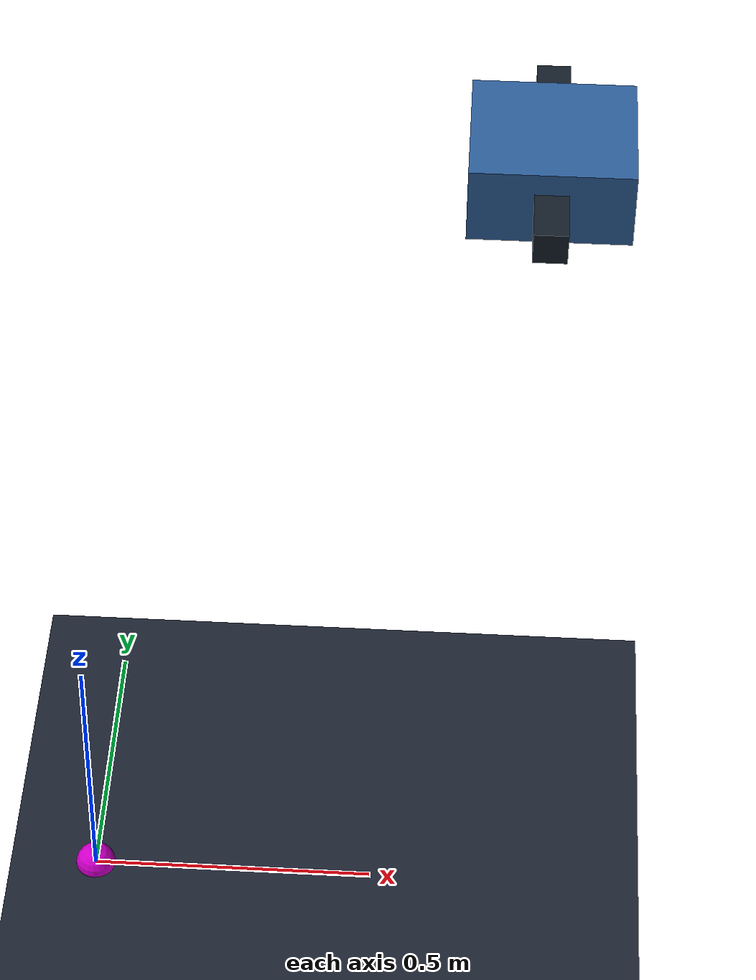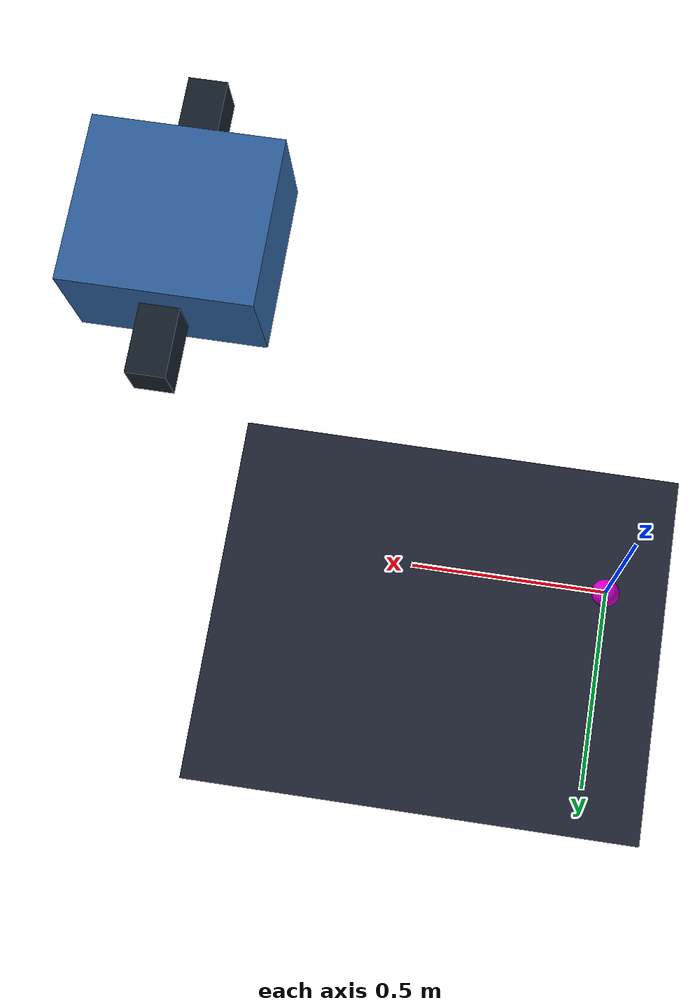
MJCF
<?xml version='1.0' encoding='utf-8'?>
<mujoco model="ffw_sg2_rack_upper_to_lower">
  <compiler angle="radian" meshdir="assets" autolimits="true" />
  <option timestep="0.0015" integrator="implicitfast" gravity="0 0 -9.81" iterations="120" ls_iterations="60" cone="pyramidal" />
  <asset>
    <texture name="floor_grid_tex" type="2d" builtin="checker" width="1024" height="1024" rgb1="0.10 0.12 0.18" rgb2="0.14 0.16 0.22" mark="none" />
    <material name="floor_grid_mat" texture="floor_grid_tex" texrepeat="6 6" texuniform="true" reflectance="0.02" />
    <texture name="white_sky" type="skybox" builtin="gradient" rgb1="1 1 1" rgb2="1 1 1" width="256" height="1536" />
    <material name="object_matte" rgba="0.18 0.38 0.62 1" />
    <material name="object_grasp_matte" rgba="0.08 0.12 0.16 1" />
  </asset>
  <worldbody>
    <light name="main_light" pos="0 0 5" dir="0 0 -1" diffuse="1 1 1" specular="0.1 0.1 0.1" directional="true" />
    <geom name="floor" type="plane" size="0 0 0.05" material="floor_grid_mat" contype="1" conaffinity="1" friction="1 0.005 0.0001" />
    <body name="robot_com_marker" mocap="true" pos="0 0 0">
      <geom name="robot_com_marker_geom" type="sphere" size="0.025" rgba="0.10 0.30 1.00 0.75" contype="0" conaffinity="0" mass="0" />
    </body>
    <body name="payload_com_marker" mocap="true" pos="0 0 0">
      <geom name="payload_com_marker_geom" type="sphere" size="0.025" rgba="1.00 0.48 0.08 0.75" contype="0" conaffinity="0" mass="0" />
    </body>
    <body name="combined_com_marker" mocap="true" pos="0 0 0">
      <geom name="combined_com_marker_geom" type="sphere" size="0.032" rgba="0.00 0.85 0.25 0.85" contype="0" conaffinity="0" mass="0" />
    </body>
    <body name="reference_com_marker" mocap="true" pos="0 0 0">
      <geom name="reference_com_marker_geom" type="sphere" size="0.036" rgba="1.00 0.00 0.95 0.85" contype="0" conaffinity="0" mass="0" />
    </body>
    <body name="object_box" pos="0.75 0 1.65">
      <freejoint name="object_freejoint" />
      <inertial pos="0 0 0" mass="3.0" diaginertia="0.0180 0.0144 0.0250" />
      <geom name="object_collision" type="box" size="0.12 0.11 0.06" material="object_matte" friction="1.5 0.02 0.001" contype="1" conaffinity="1" mass="0" />
      <geom name="object_left_grasp" type="box" size="0.025 0.045 0.025" pos="0 0.155 0" material="object_grasp_matte" contype="0" conaffinity="0" mass="0" />
      <geom name="object_right_grasp" type="box" size="0.025 0.045 0.025" pos="0 -0.155 0" material="object_grasp_matte" contype="0" conaffinity="0" mass="0" />
    </body>
  </worldbody>
</mujoco>
